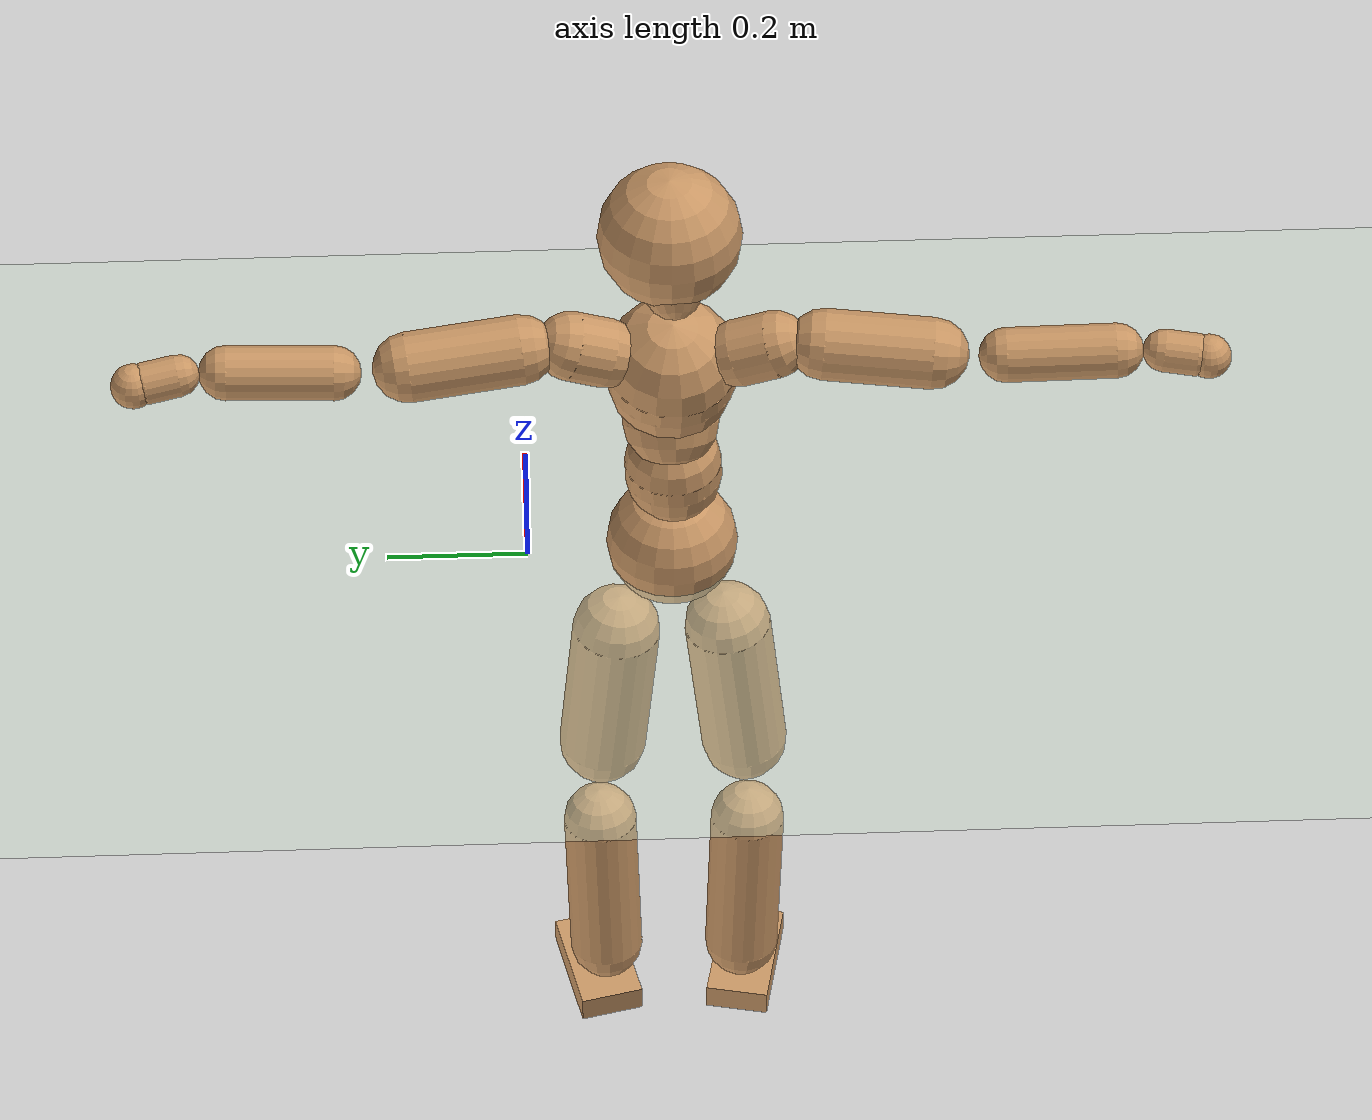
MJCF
<mujoco model="humanoid">
  <compiler coordinate="local" angle="radian"/>
  <default>
    <joint damping="0.0" armature="0.01" stiffness="0.0" limited="true"/>
    <geom conaffinity="1" condim="3" contype="7" margin="0.001" rgba="0.8 0.6 .4 1"/>
  </default>
  <asset>
    <texture type="skybox" builtin="gradient" rgb1=".4 .5 .6" rgb2="0 0 0" width="100" height="100"/>
    <texture builtin="flat" height="1278" mark="cross" markrgb="1 1 1" name="texgeom" random="0.01" rgb1="0.8 0.6 0.4" rgb2="0.8 0.6 0.4" type="cube" width="127"/>
    <texture builtin="checker" height="100" name="texplane" rgb1="0 0 0" rgb2="0.8 0.8 0.8" type="2d" width="100"/>
    <material name="MatPlane" reflectance="0.5" shininess="1" specular="1" texrepeat="60 60" texture="texplane"/>
    <material name="geom" texture="texgeom" texuniform="true"/>
  </asset>
  <worldbody>
    <light cutoff="100" diffuse="1 1 1" dir="-0 0 -1.3" directional="true" exponent="1" pos="0 0 1.3" specular=".1 .1 .1"/>
    <geom conaffinity="1" condim="3" name="floor" pos="0 0 0" rgba="0.8 0.9 0.8 1" size="100 100 .2" type="plane" material="MatPlane"/>
    <body name="Pelvis" pos="-0.0013 -0.2056 0.0236">
      <freejoint name="Pelvis"/>
      <geom type="sphere" contype="1" conaffinity="1" density="500" size="0.0937" pos="0.0000 0.0000 0.0000" name="Pelvis"/>
      <body name="L_Hip" pos="-0.0093 0.0734 -0.0915">
        <joint name="L_Hip_x" type="hinge" pos="0 0 0" axis="1 0 0" stiffness="800" damping="80" armature="0.02" range="-180.0000 180.0000"/>
        <joint name="L_Hip_y" type="hinge" pos="0 0 0" axis="0 1 0" stiffness="800" damping="80" armature="0.02" range="-180.0000 180.0000"/>
        <joint name="L_Hip_z" type="hinge" pos="0 0 0" axis="0 0 1" stiffness="800" damping="80" armature="0.02" range="-180.0000 180.0000"/>
        <geom type="capsule" contype="1" conaffinity="1" density="500" fromto="-0.0006 0.0073 -0.0794 -0.0025 0.0293 -0.3177" size="0.0631" name="L_Hip"/>
        <body name="L_Knee" pos="-0.0032 0.0366 -0.3971">
          <joint name="L_Knee_x" type="hinge" pos="0 0 0" axis="1 0 0" stiffness="800" damping="80" armature="0.02" range="-180.0000 180.0000"/>
          <joint name="L_Knee_y" type="hinge" pos="0 0 0" axis="0 1 0" stiffness="800" damping="80" armature="0.02" range="-180.0000 180.0000"/>
          <joint name="L_Knee_z" type="hinge" pos="0 0 0" axis="0 0 1" stiffness="800" damping="80" armature="0.02" range="-180.0000 180.0000"/>
          <geom type="capsule" contype="1" conaffinity="1" density="500" fromto="-0.0092 -0.0022 -0.0832 -0.0367 -0.0088 -0.3328" size="0.0541" name="L_Knee"/>
          <body name="L_Ankle" pos="-0.0459 -0.011 -0.416">
            <joint name="L_Ankle_x" type="hinge" pos="0 0 0" axis="1 0 0" stiffness="800" damping="80" armature="0.02" range="-180.0000 180.0000"/>
            <joint name="L_Ankle_y" type="hinge" pos="0 0 0" axis="0 1 0" stiffness="800" damping="80" armature="0.02" range="-180.0000 180.0000"/>
            <joint name="L_Ankle_z" type="hinge" pos="0 0 0" axis="0 0 1" stiffness="800" damping="80" armature="0.02" range="-180.0000 180.0000"/>
            <geom type="box" contype="1" conaffinity="1" density="500" pos="0.0585 0.0134 -0.0293" size="0.0826 0.0467 0.0206" quat="0.9937 0.0000 0.0000 0.1123" name="L_Ankle"/>
            <body name="L_Toe" pos="0.1169 0.0268 -0.0586">
              <joint name="L_Toe_x" type="hinge" pos="0 0 0" axis="1 0 0" stiffness="500" damping="50" armature="0.02" range="-180.0000 180.0000"/>
              <joint name="L_Toe_y" type="hinge" pos="0 0 0" axis="0 1 0" stiffness="500" damping="50" armature="0.02" range="-180.0000 180.0000"/>
              <joint name="L_Toe_z" type="hinge" pos="0 0 0" axis="0 0 1" stiffness="500" damping="50" armature="0.02" range="-180.0000 180.0000"/>
              <geom type="box" contype="1" conaffinity="1" density="500" pos="0.0000 0.0000 0.0297" size="0.0009 0.0023 0.0011" quat="0.9930 0.0000 0.0000 0.1184" name="L_Toe"/>
            </body>
          </body>
        </body>
      </body>
      <body name="R_Hip" pos="-0.0056 -0.0712 -0.0904">
        <joint name="R_Hip_x" type="hinge" pos="0 0 0" axis="1 0 0" stiffness="800" damping="80" armature="0.02" range="-180.0000 180.0000"/>
        <joint name="R_Hip_y" type="hinge" pos="0 0 0" axis="0 1 0" stiffness="800" damping="80" armature="0.02" range="-180.0000 180.0000"/>
        <joint name="R_Hip_z" type="hinge" pos="0 0 0" axis="0 0 1" stiffness="800" damping="80" armature="0.02" range="-180.0000 180.0000"/>
        <geom type="capsule" contype="1" conaffinity="1" density="500" fromto="-0.0012 -0.0086 -0.0810 -0.0049 -0.0344 -0.3238" size="0.0622" name="R_Hip"/>
        <body name="R_Knee" pos="-0.0062 -0.043 -0.4048">
          <joint name="R_Knee_x" type="hinge" pos="0 0 0" axis="1 0 0" stiffness="800" damping="80" armature="0.02" range="-180.0000 180.0000"/>
          <joint name="R_Knee_y" type="hinge" pos="0 0 0" axis="0 1 0" stiffness="800" damping="80" armature="0.02" range="-180.0000 180.0000"/>
          <joint name="R_Knee_z" type="hinge" pos="0 0 0" axis="0 0 1" stiffness="800" damping="80" armature="0.02" range="-180.0000 180.0000"/>
          <geom type="capsule" contype="1" conaffinity="1" density="500" fromto="-0.0088 0.0029 -0.0833 -0.0350 0.0115 -0.3332" size="0.0543" name="R_Knee"/>
          <body name="R_Ankle" pos="-0.0438 0.0143 -0.4164">
            <joint name="R_Ankle_x" type="hinge" pos="0 0 0" axis="1 0 0" stiffness="800" damping="80" armature="0.02" range="-180.0000 180.0000"/>
            <joint name="R_Ankle_y" type="hinge" pos="0 0 0" axis="0 1 0" stiffness="800" damping="80" armature="0.02" range="-180.0000 180.0000"/>
            <joint name="R_Ankle_z" type="hinge" pos="0 0 0" axis="0 0 1" stiffness="800" damping="80" armature="0.02" range="-180.0000 180.0000"/>
            <geom type="box" contype="1" conaffinity="1" density="500" pos="0.0602 -0.0122 -0.0250" size="0.084 0.0462 0.0206" quat="0.9950 0.0000 0.0000 -0.1001" name="R_Ankle"/>
            <body name="R_Toe" pos="0.1204 -0.0245 -0.05">
              <joint name="R_Toe_x" type="hinge" pos="0 0 0" axis="1 0 0" stiffness="500" damping="50" armature="0.02" range="-180.0000 180.0000"/>
              <joint name="R_Toe_y" type="hinge" pos="0 0 0" axis="0 1 0" stiffness="500" damping="50" armature="0.02" range="-180.0000 180.0000"/>
              <joint name="R_Toe_z" type="hinge" pos="0 0 0" axis="0 0 1" stiffness="500" damping="50" armature="0.02" range="-180.0000 180.0000"/>
              <geom type="box" contype="1" conaffinity="1" density="500" pos="0.0000 0.0000 0.0275" size="0.0008 0.0023 0.0012" quat="0.9959 0.0000 0.0000 -0.0907" name="R_Toe"/>
            </body>
          </body>
        </body>
      </body>
      <body name="Torso" pos="-0.0222 -0.0029 0.1049">
        <joint name="Torso_x" type="hinge" pos="0 0 0" axis="1 0 0" stiffness="1000" damping="100" armature="0.02" range="-180.0000 180.0000"/>
        <joint name="Torso_y" type="hinge" pos="0 0 0" axis="0 1 0" stiffness="1000" damping="100" armature="0.02" range="-180.0000 180.0000"/>
        <joint name="Torso_z" type="hinge" pos="0 0 0" axis="0 0 1" stiffness="1000" damping="100" armature="0.02" range="-180.0000 180.0000"/>
        <geom type="capsule" contype="1" conaffinity="1" density="500" fromto="-0.0020 0.0026 0.0781 -0.0013 0.0018 0.0520" size="0.0684" name="Torso"/>
        <body name="Spine" pos="-0.0033 0.0044 0.1301">
          <joint name="Spine_x" type="hinge" pos="0 0 0" axis="1 0 0" stiffness="1000" damping="100" armature="0.02" range="-180.0000 180.0000"/>
          <joint name="Spine_y" type="hinge" pos="0 0 0" axis="0 1 0" stiffness="1000" damping="100" armature="0.02" range="-180.0000 180.0000"/>
          <joint name="Spine_z" type="hinge" pos="0 0 0" axis="0 0 1" stiffness="1000" damping="100" armature="0.02" range="-180.0000 180.0000"/>
          <geom type="capsule" contype="1" conaffinity="1" density="500" fromto="0.0161 0.0007 0.0300 0.0107 0.0005 0.0200" size="0.0686" name="Spine"/>
          <body name="Chest" pos="0.0268 0.0011 0.0501">
            <joint name="Chest_x" type="hinge" pos="0 0 0" axis="1 0 0" stiffness="1000" damping="100" armature="0.02" range="-180.0000 180.0000"/>
            <joint name="Chest_y" type="hinge" pos="0 0 0" axis="0 1 0" stiffness="1000" damping="100" armature="0.02" range="-180.0000 180.0000"/>
            <joint name="Chest_z" type="hinge" pos="0 0 0" axis="0 0 1" stiffness="1000" damping="100" armature="0.02" range="-180.0000 180.0000"/>
            <geom type="capsule" contype="1" conaffinity="1" density="500" fromto="-0.0202 -0.0013 0.0860 -0.0135 -0.0009 0.0574" size="0.0918" name="Chest"/>
            <body name="Neck" pos="-0.032 -0.0045 0.2067">
              <joint name="Neck_x" type="hinge" pos="0 0 0" axis="1 0 0" stiffness="500" damping="50" armature="0.02" range="-180.0000 180.0000"/>
              <joint name="Neck_y" type="hinge" pos="0 0 0" axis="0 1 0" stiffness="500" damping="50" armature="0.02" range="-180.0000 180.0000"/>
              <joint name="Neck_z" type="hinge" pos="0 0 0" axis="0 0 1" stiffness="500" damping="50" armature="0.02" range="-180.0000 180.0000"/>
              <geom type="capsule" contype="1" conaffinity="1" density="500" fromto="0.0117 0.0008 0.0148 0.0469 0.0032 0.0594" size="0.0406" name="Neck"/>
              <body name="Head" pos="0.0587 0.0041 0.0742">
                <joint name="Head_x" type="hinge" pos="0 0 0" axis="1 0 0" stiffness="500" damping="50" armature="0.02" range="-180.0000 180.0000"/>
                <joint name="Head_y" type="hinge" pos="0 0 0" axis="0 1 0" stiffness="500" damping="50" armature="0.02" range="-180.0000 180.0000"/>
                <joint name="Head_z" type="hinge" pos="0 0 0" axis="0 0 1" stiffness="500" damping="50" armature="0.02" range="-180.0000 180.0000"/>
                <geom type="sphere" contype="1" conaffinity="1" density="500" size="0.0998" pos="0.0000 0.0000 0.0000" name="Head"/>
              </body>
            </body>
            <body name="L_Thorax" pos="-0.0319 0.0732 0.1126">
              <joint name="L_Thorax_x" type="hinge" pos="0 0 0" axis="1 0 0" stiffness="500" damping="50" armature="0.02" range="-180.0000 180.0000"/>
              <joint name="L_Thorax_y" type="hinge" pos="0 0 0" axis="0 1 0" stiffness="500" damping="50" armature="0.02" range="-180.0000 180.0000"/>
              <joint name="L_Thorax_z" type="hinge" pos="0 0 0" axis="0 0 1" stiffness="500" damping="50" armature="0.02" range="-180.0000 180.0000"/>
              <geom type="capsule" contype="1" conaffinity="1" density="500" fromto="-0.0017 0.0162 0.0066 -0.0067 0.0649 0.0266" size="0.0485" name="L_Thorax"/>
              <body name="L_Shoulder" pos="-0.0083 0.0811 0.0332">
                <joint name="L_Shoulder_x" type="hinge" pos="0 0 0" axis="1 0 0" stiffness="500" damping="50" armature="0.02" range="-720.0000 720.0000"/>
                <joint name="L_Shoulder_y" type="hinge" pos="0 0 0" axis="0 1 0" stiffness="500" damping="50" armature="0.02" range="-720.0000 720.0000"/>
                <joint name="L_Shoulder_z" type="hinge" pos="0 0 0" axis="0 0 1" stiffness="500" damping="50" armature="0.02" range="-720.0000 720.0000"/>
                <geom type="capsule" contype="1" conaffinity="1" density="500" fromto="-0.0060 0.0518 -0.0034 -0.0239 0.2071 -0.0135" size="0.0487" name="L_Shoulder"/>
                <body name="L_Elbow" pos="-0.0298 0.2589 -0.0168">
                  <joint name="L_Elbow_x" type="hinge" pos="0 0 0" axis="1 0 0" stiffness="500" damping="50" armature="0.02" range="-720.0000 720.0000"/>
                  <joint name="L_Elbow_y" type="hinge" pos="0 0 0" axis="0 1 0" stiffness="500" damping="50" armature="0.02" range="-720.0000 720.0000"/>
                  <joint name="L_Elbow_z" type="hinge" pos="0 0 0" axis="0 0 1" stiffness="500" damping="50" armature="0.02" range="-720.0000 720.0000"/>
                  <geom type="capsule" contype="1" conaffinity="1" density="500" fromto="-0.0002 0.0489 0.0021 -0.0008 0.1957 0.0086" size="0.0381" name="L_Elbow"/>
                  <body name="L_Wrist" pos="-0.0009 0.2447 0.0107">
                    <joint name="L_Wrist_x" type="hinge" pos="0 0 0" axis="1 0 0" stiffness="300" damping="30" armature="0.02" range="-180.0000 180.0000"/>
                    <joint name="L_Wrist_y" type="hinge" pos="0 0 0" axis="0 1 0" stiffness="300" damping="30" armature="0.02" range="-180.0000 180.0000"/>
                    <joint name="L_Wrist_z" type="hinge" pos="0 0 0" axis="0 0 1" stiffness="300" damping="30" armature="0.02" range="-180.0000 180.0000"/>
                    <geom type="capsule" contype="1" conaffinity="1" density="500" fromto="-0.0026 0.0155 -0.0019 -0.0104 0.0620 -0.0078" size="0.0292" name="L_Wrist"/>
                    <body name="L_Hand" pos="-0.013 0.0775 -0.0097">
                      <joint name="L_Hand_x" type="hinge" pos="0 0 0" axis="1 0 0" stiffness="300" damping="30" armature="0.02" range="-180.0000 180.0000"/>
                      <joint name="L_Hand_y" type="hinge" pos="0 0 0" axis="0 1 0" stiffness="300" damping="30" armature="0.02" range="-180.0000 180.0000"/>
                      <joint name="L_Hand_z" type="hinge" pos="0 0 0" axis="0 0 1" stiffness="300" damping="30" armature="0.02" range="-180.0000 180.0000"/>
                      <geom type="sphere" contype="1" conaffinity="1" density="500" size="0.0313" pos="0.0000 0.0000 0.0000" name="L_Hand"/>
                    </body>
                  </body>
                </body>
              </body>
            </body>
            <body name="R_Thorax" pos="-0.0372 -0.0754 0.111">
              <joint name="R_Thorax_x" type="hinge" pos="0 0 0" axis="1 0 0" stiffness="500" damping="50" armature="0.02" range="-180.0000 180.0000"/>
              <joint name="R_Thorax_y" type="hinge" pos="0 0 0" axis="0 1 0" stiffness="500" damping="50" armature="0.02" range="-180.0000 180.0000"/>
              <joint name="R_Thorax_z" type="hinge" pos="0 0 0" axis="0 0 1" stiffness="500" damping="50" armature="0.02" range="-180.0000 180.0000"/>
              <geom type="capsule" contype="1" conaffinity="1" density="500" fromto="-0.0018 -0.0167 0.0067 -0.0074 -0.0668 0.0270" size="0.047" name="R_Thorax"/>
              <body name="R_Shoulder" pos="-0.0092 -0.0835 0.0337">
                <joint name="R_Shoulder_x" type="hinge" pos="0 0 0" axis="1 0 0" stiffness="500" damping="50" armature="0.02" range="-720.0000 720.0000"/>
                <joint name="R_Shoulder_y" type="hinge" pos="0 0 0" axis="0 1 0" stiffness="500" damping="50" armature="0.02" range="-720.0000 720.0000"/>
                <joint name="R_Shoulder_z" type="hinge" pos="0 0 0" axis="0 0 1" stiffness="500" damping="50" armature="0.02" range="-720.0000 720.0000"/>
                <geom type="capsule" contype="1" conaffinity="1" density="500" fromto="-0.0049 -0.0498 -0.0029 -0.0195 -0.1991 -0.0118" size="0.0497" name="R_Shoulder"/>
                <body name="R_Elbow" pos="-0.0243 -0.2489 -0.0147">
                  <joint name="R_Elbow_x" type="hinge" pos="0 0 0" axis="1 0 0" stiffness="500" damping="50" armature="0.02" range="-720.0000 720.0000"/>
                  <joint name="R_Elbow_y" type="hinge" pos="0 0 0" axis="0 1 0" stiffness="500" damping="50" armature="0.02" range="-720.0000 720.0000"/>
                  <joint name="R_Elbow_z" type="hinge" pos="0 0 0" axis="0 0 1" stiffness="500" damping="50" armature="0.02" range="-720.0000 720.0000"/>
                  <geom type="capsule" contype="1" conaffinity="1" density="500" fromto="-0.0009 -0.0500 0.0017 -0.0036 -0.2002 0.0070" size="0.0382" name="R_Elbow"/>
                  <body name="R_Wrist" pos="-0.0045 -0.2502 0.0087">
                    <joint name="R_Wrist_x" type="hinge" pos="0 0 0" axis="1 0 0" stiffness="300" damping="30" armature="0.02" range="-180.0000 180.0000"/>
                    <joint name="R_Wrist_y" type="hinge" pos="0 0 0" axis="0 1 0" stiffness="300" damping="30" armature="0.02" range="-180.0000 180.0000"/>
                    <joint name="R_Wrist_z" type="hinge" pos="0 0 0" axis="0 0 1" stiffness="300" damping="30" armature="0.02" range="-180.0000 180.0000"/>
                    <geom type="capsule" contype="1" conaffinity="1" density="500" fromto="-0.0020 -0.0154 -0.0014 -0.0079 -0.0614 -0.0056" size="0.0296" name="R_Wrist"/>
                    <body name="R_Hand" pos="-0.0099 -0.0768 -0.007">
                      <joint name="R_Hand_x" type="hinge" pos="0 0 0" axis="1 0 0" stiffness="300" damping="30" armature="0.02" range="-180.0000 180.0000"/>
                      <joint name="R_Hand_y" type="hinge" pos="0 0 0" axis="0 1 0" stiffness="300" damping="30" armature="0.02" range="-180.0000 180.0000"/>
                      <joint name="R_Hand_z" type="hinge" pos="0 0 0" axis="0 0 1" stiffness="300" damping="30" armature="0.02" range="-180.0000 180.0000"/>
                      <geom type="sphere" contype="1" conaffinity="1" density="500" size="0.0310" pos="0.0000 0.0000 0.0000" name="R_Hand"/>
                    </body>
                  </body>
                </body>
              </body>
            </body>
          </body>
        </body>
      </body>
    </body>
  </worldbody>
  <actuator>
    <motor name="L_Hip_x" joint="L_Hip_x" gear="500"/>
    <motor name="L_Hip_y" joint="L_Hip_y" gear="500"/>
    <motor name="L_Hip_z" joint="L_Hip_z" gear="500"/>
    <motor name="L_Knee_x" joint="L_Knee_x" gear="500"/>
    <motor name="L_Knee_y" joint="L_Knee_y" gear="500"/>
    <motor name="L_Knee_z" joint="L_Knee_z" gear="500"/>
    <motor name="L_Ankle_x" joint="L_Ankle_x" gear="500"/>
    <motor name="L_Ankle_y" joint="L_Ankle_y" gear="500"/>
    <motor name="L_Ankle_z" joint="L_Ankle_z" gear="500"/>
    <motor name="L_Toe_x" joint="L_Toe_x" gear="500"/>
    <motor name="L_Toe_y" joint="L_Toe_y" gear="500"/>
    <motor name="L_Toe_z" joint="L_Toe_z" gear="500"/>
    <motor name="R_Hip_x" joint="R_Hip_x" gear="500"/>
    <motor name="R_Hip_y" joint="R_Hip_y" gear="500"/>
    <motor name="R_Hip_z" joint="R_Hip_z" gear="500"/>
    <motor name="R_Knee_x" joint="R_Knee_x" gear="500"/>
    <motor name="R_Knee_y" joint="R_Knee_y" gear="500"/>
    <motor name="R_Knee_z" joint="R_Knee_z" gear="500"/>
    <motor name="R_Ankle_x" joint="R_Ankle_x" gear="500"/>
    <motor name="R_Ankle_y" joint="R_Ankle_y" gear="500"/>
    <motor name="R_Ankle_z" joint="R_Ankle_z" gear="500"/>
    <motor name="R_Toe_x" joint="R_Toe_x" gear="500"/>
    <motor name="R_Toe_y" joint="R_Toe_y" gear="500"/>
    <motor name="R_Toe_z" joint="R_Toe_z" gear="500"/>
    <motor name="Torso_x" joint="Torso_x" gear="500"/>
    <motor name="Torso_y" joint="Torso_y" gear="500"/>
    <motor name="Torso_z" joint="Torso_z" gear="500"/>
    <motor name="Spine_x" joint="Spine_x" gear="500"/>
    <motor name="Spine_y" joint="Spine_y" gear="500"/>
    <motor name="Spine_z" joint="Spine_z" gear="500"/>
    <motor name="Chest_x" joint="Chest_x" gear="500"/>
    <motor name="Chest_y" joint="Chest_y" gear="500"/>
    <motor name="Chest_z" joint="Chest_z" gear="500"/>
    <motor name="Neck_x" joint="Neck_x" gear="500"/>
    <motor name="Neck_y" joint="Neck_y" gear="500"/>
    <motor name="Neck_z" joint="Neck_z" gear="500"/>
    <motor name="Head_x" joint="Head_x" gear="500"/>
    <motor name="Head_y" joint="Head_y" gear="500"/>
    <motor name="Head_z" joint="Head_z" gear="500"/>
    <motor name="L_Thorax_x" joint="L_Thorax_x" gear="500"/>
    <motor name="L_Thorax_y" joint="L_Thorax_y" gear="500"/>
    <motor name="L_Thorax_z" joint="L_Thorax_z" gear="500"/>
    <motor name="L_Shoulder_x" joint="L_Shoulder_x" gear="500"/>
    <motor name="L_Shoulder_y" joint="L_Shoulder_y" gear="500"/>
    <motor name="L_Shoulder_z" joint="L_Shoulder_z" gear="500"/>
    <motor name="L_Elbow_x" joint="L_Elbow_x" gear="500"/>
    <motor name="L_Elbow_y" joint="L_Elbow_y" gear="500"/>
    <motor name="L_Elbow_z" joint="L_Elbow_z" gear="500"/>
    <motor name="L_Wrist_x" joint="L_Wrist_x" gear="500"/>
    <motor name="L_Wrist_y" joint="L_Wrist_y" gear="500"/>
    <motor name="L_Wrist_z" joint="L_Wrist_z" gear="500"/>
    <motor name="L_Hand_x" joint="L_Hand_x" gear="500"/>
    <motor name="L_Hand_y" joint="L_Hand_y" gear="500"/>
    <motor name="L_Hand_z" joint="L_Hand_z" gear="500"/>
    <motor name="R_Thorax_x" joint="R_Thorax_x" gear="500"/>
    <motor name="R_Thorax_y" joint="R_Thorax_y" gear="500"/>
    <motor name="R_Thorax_z" joint="R_Thorax_z" gear="500"/>
    <motor name="R_Shoulder_x" joint="R_Shoulder_x" gear="500"/>
    <motor name="R_Shoulder_y" joint="R_Shoulder_y" gear="500"/>
    <motor name="R_Shoulder_z" joint="R_Shoulder_z" gear="500"/>
    <motor name="R_Elbow_x" joint="R_Elbow_x" gear="500"/>
    <motor name="R_Elbow_y" joint="R_Elbow_y" gear="500"/>
    <motor name="R_Elbow_z" joint="R_Elbow_z" gear="500"/>
    <motor name="R_Wrist_x" joint="R_Wrist_x" gear="500"/>
    <motor name="R_Wrist_y" joint="R_Wrist_y" gear="500"/>
    <motor name="R_Wrist_z" joint="R_Wrist_z" gear="500"/>
    <motor name="R_Hand_x" joint="R_Hand_x" gear="500"/>
    <motor name="R_Hand_y" joint="R_Hand_y" gear="500"/>
    <motor name="R_Hand_z" joint="R_Hand_z" gear="500"/>
  </actuator>
  <contact>
    <exclude body1="Torso" body2="Chest"/>
    <exclude body1="Head" body2="Chest"/>
    <exclude body1="R_Knee" body2="R_Toe"/>
    <exclude body1="R_Knee" body2="L_Ankle"/>
    <exclude body1="R_Knee" body2="L_Toe"/>
    <exclude body1="L_Knee" body2="L_Toe"/>
    <exclude body1="L_Knee" body2="R_Ankle"/>
    <exclude body1="L_Knee" body2="R_Toe"/>
    <exclude body1="L_Shoulder" body2="Chest"/>
    <exclude body1="R_Shoulder" body2="Chest"/>
  </contact>
  <sensor/>
  <size njmax="700" nconmax="700"/>
</mujoco>
